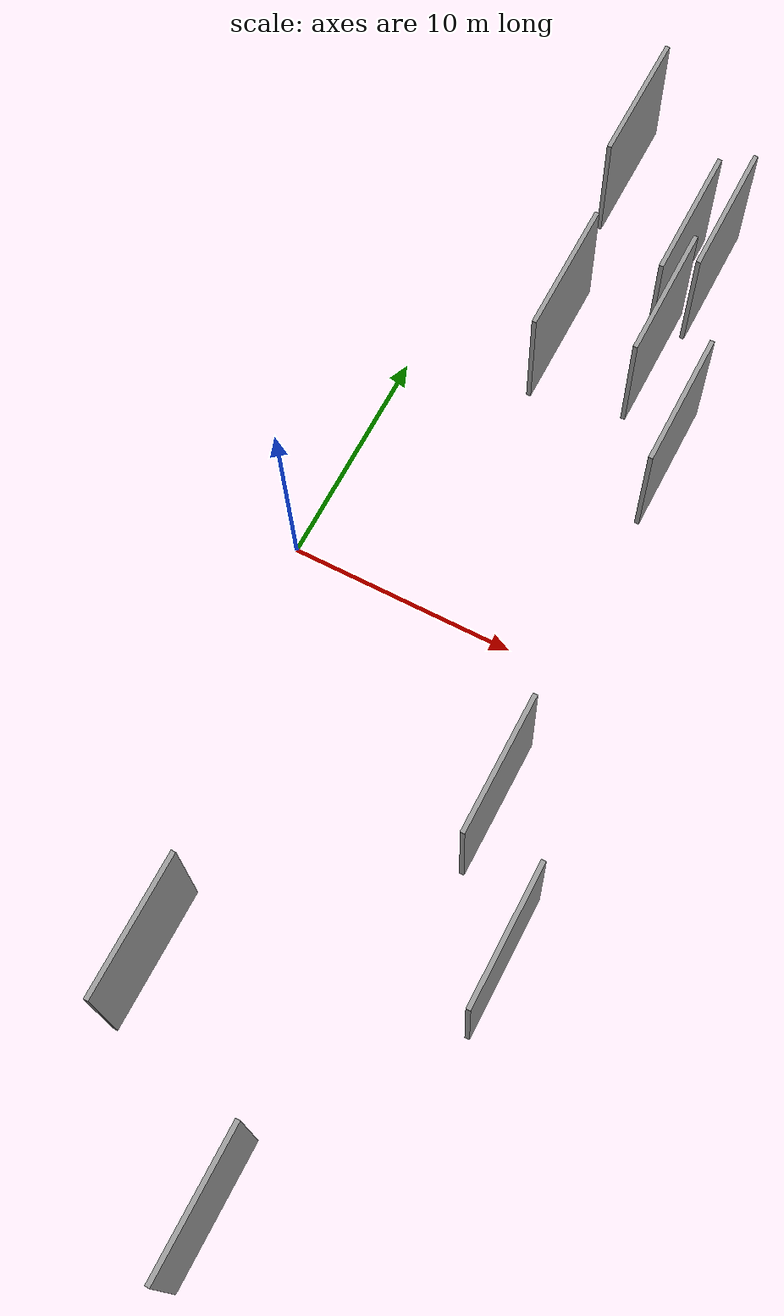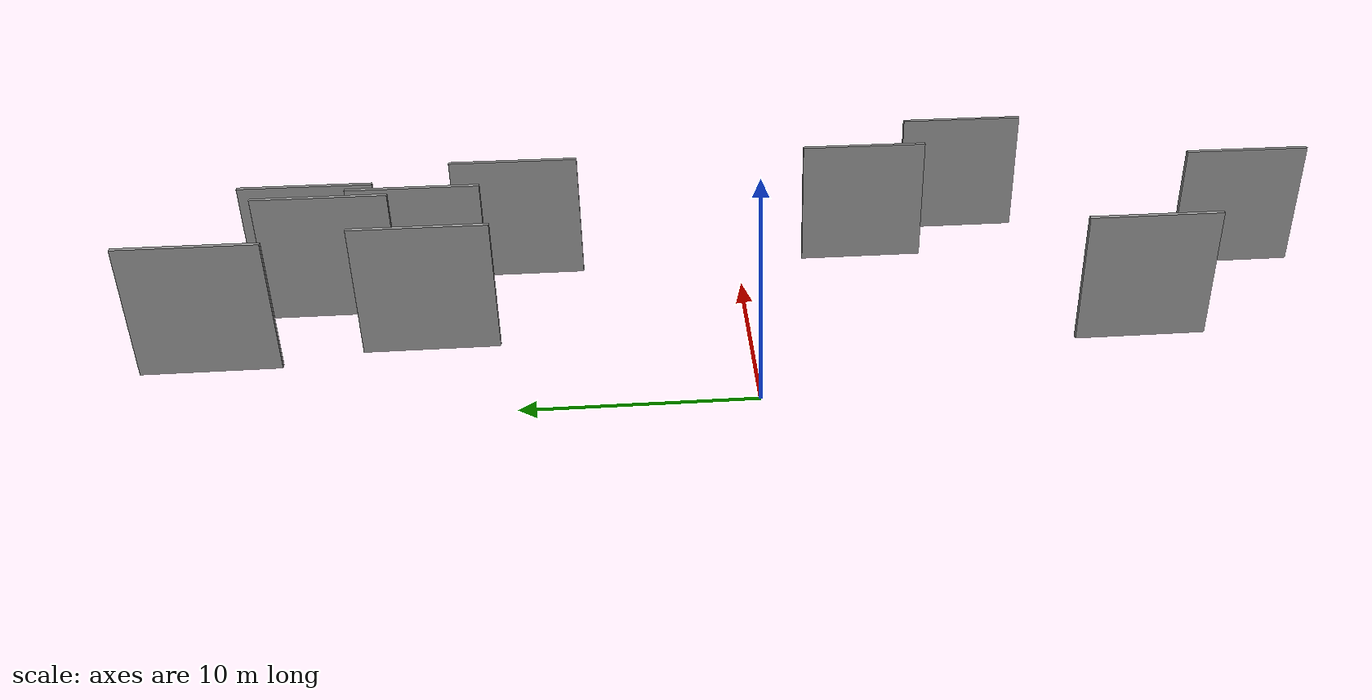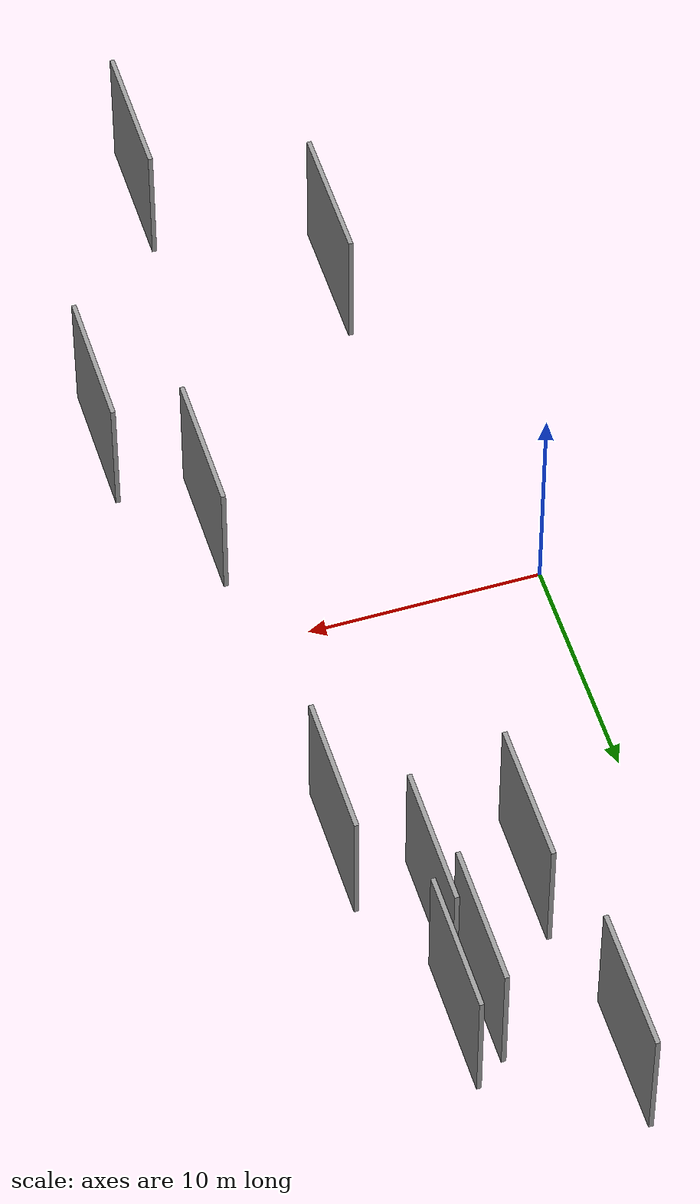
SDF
<sdf version="1.6">
 <world name="default">
  <scene>
   <sky><clouds><speed>12</speed></clouds></sky>
   <ambient>0.4 0.4 0.4 1</ambient>
   <background>0.7 0.7 0.7 1</background>
   <shadows>1</shadows>
  </scene>
  <gravity>0 0 -9.8066</gravity>
  <magnetic_field>6e-06 2.3e-05 -4.2e-05</magnetic_field>
  <physics default="0" name="default_physics" type="ode">
   <ode>
    <solver>
     <type>quick</type>
     <iters>10</iters>
     <sor>1.0</sor>
     <use_dynamic_moi_rescaling>0</use_dynamic_moi_rescaling>
    </solver>
    <constraints>
     <cfm>0</cfm>
     <erp>0.2</erp>
     <contact_max_correcting_vel>100</contact_max_correcting_vel>
     <contact_surface_layer>0.001</contact_surface_layer>
    </constraints>
   </ode>
   <max_step_size>0.004</max_step_size>
   <real_time_factor>1</real_time_factor>
   <real_time_update_rate>250</real_time_update_rate>
  </physics>
  <light name="sun" type="directional">
   <pose>0 0 10 0 0 0</pose>
   <diffuse>0.8 0.8 0.8 1</diffuse>
   <specular>0.2 0.2 0.2 1</specular>
   <attenuation>
    <range>1000</range>
    <constant>0.9</constant>
    <linear>0.01</linear>
    <quadratic>0.001</quadratic>
   </attenuation>
   <direction>-0.5 0.1 -0.9</direction>
  </light>
  <model name="grey_wall_1">
   <static>1</static>
   <pose>3.6169 -17.6353 0.0 0.000000 0.000000 1.570796</pose>
   <link name="link">
    <pose>0 0 3.00 0 0 0</pose>
    <collision name="collision"><geometry><box><size>6.00 0.2 6.00</size></box></geometry></collision>
    <visual name="visual">
     <cast_shadows>0</cast_shadows>
     <geometry><box><size>6.00 0.2 6.00</size></box></geometry>
     <material>
      <script>
       <uri>model://grey_wall/materials/scripts</uri>
       <uri>model://grey_wall/materials/textures</uri>
       <name>vrc/grey_wall</name>
      </script>
     </material>
    </visual>
   </link>
  </model>
  <model name="grey_wall_2">
   <static>1</static>
   <pose>5.3866 14.1680 0.0 0.000000 0.000000 1.570796</pose>
   <link name="link">
    <pose>0 0 3.00 0 0 0</pose>
    <collision name="collision"><geometry><box><size>6.00 0.2 6.00</size></box></geometry></collision>
    <visual name="visual">
     <cast_shadows>0</cast_shadows>
     <geometry><box><size>6.00 0.2 6.00</size></box></geometry>
     <material>
      <script>
       <uri>model://grey_wall/materials/scripts</uri>
       <uri>model://grey_wall/materials/textures</uri>
       <name>vrc/grey_wall</name>
      </script>
     </material>
    </visual>
   </link>
  </model>
  <model name="grey_wall_3">
   <static>1</static>
   <pose>15.6339 -11.8410 0.0 0.000000 0.000000 1.570796</pose>
   <link name="link">
    <pose>0 0 3.00 0 0 0</pose>
    <collision name="collision"><geometry><box><size>6.00 0.2 6.00</size></box></geometry></collision>
    <visual name="visual">
     <cast_shadows>0</cast_shadows>
     <geometry><box><size>6.00 0.2 6.00</size></box></geometry>
     <material>
      <script>
       <uri>model://grey_wall/materials/scripts</uri>
       <uri>model://grey_wall/materials/textures</uri>
       <name>vrc/grey_wall</name>
      </script>
     </material>
    </visual>
   </link>
  </model>
  <model name="grey_wall_4">
   <static>1</static>
   <pose>4.4022 23.4402 0.0 0.000000 0.000000 1.570796</pose>
   <link name="link">
    <pose>0 0 3.00 0 0 0</pose>
    <collision name="collision"><geometry><box><size>6.00 0.2 6.00</size></box></geometry></collision>
    <visual name="visual">
     <cast_shadows>0</cast_shadows>
     <geometry><box><size>6.00 0.2 6.00</size></box></geometry>
     <material>
      <script>
       <uri>model://grey_wall/materials/scripts</uri>
       <uri>model://grey_wall/materials/textures</uri>
       <name>vrc/grey_wall</name>
      </script>
     </material>
    </visual>
   </link>
  </model>
  <model name="grey_wall_5">
   <static>1</static>
   <pose>9.5581 14.9873 0.0 0.000000 0.000000 1.570796</pose>
   <link name="link">
    <pose>0 0 3.00 0 0 0</pose>
    <collision name="collision"><geometry><box><size>6.00 0.2 6.00</size></box></geometry></collision>
    <visual name="visual">
     <cast_shadows>0</cast_shadows>
     <geometry><box><size>6.00 0.2 6.00</size></box></geometry>
     <material>
      <script>
       <uri>model://grey_wall/materials/scripts</uri>
       <uri>model://grey_wall/materials/textures</uri>
       <name>vrc/grey_wall</name>
      </script>
     </material>
    </visual>
   </link>
  </model>
  <model name="grey_wall_6">
   <static>1</static>
   <pose>12.5631 -6.2851 0.0 0.000000 0.000000 1.570796</pose>
   <link name="link">
    <pose>0 0 3.00 0 0 0</pose>
    <collision name="collision"><geometry><box><size>6.00 0.2 6.00</size></box></geometry></collision>
    <visual name="visual">
     <cast_shadows>0</cast_shadows>
     <geometry><box><size>6.00 0.2 6.00</size></box></geometry>
     <material>
      <script>
       <uri>model://grey_wall/materials/scripts</uri>
       <uri>model://grey_wall/materials/textures</uri>
       <name>vrc/grey_wall</name>
      </script>
     </material>
    </visual>
   </link>
  </model>
  <model name="grey_wall_7">
   <static>1</static>
   <pose>12.2308 10.6742 0.0 0.000000 0.000000 1.570796</pose>
   <link name="link">
    <pose>0 0 3.00 0 0 0</pose>
    <collision name="collision"><geometry><box><size>6.00 0.2 6.00</size></box></geometry></collision>
    <visual name="visual">
     <cast_shadows>0</cast_shadows>
     <geometry><box><size>6.00 0.2 6.00</size></box></geometry>
     <material>
      <script>
       <uri>model://grey_wall/materials/scripts</uri>
       <uri>model://grey_wall/materials/textures</uri>
       <name>vrc/grey_wall</name>
      </script>
     </material>
    </visual>
   </link>
  </model>
  <model name="grey_wall_8">
   <static>1</static>
   <pose>10.3520 -24.6975 0.0 0.000000 0.000000 1.570796</pose>
   <link name="link">
    <pose>0 0 3.00 0 0 0</pose>
    <collision name="collision"><geometry><box><size>6.00 0.2 6.00</size></box></geometry></collision>
    <visual name="visual">
     <cast_shadows>0</cast_shadows>
     <geometry><box><size>6.00 0.2 6.00</size></box></geometry>
     <material>
      <script>
       <uri>model://grey_wall/materials/scripts</uri>
       <uri>model://grey_wall/materials/textures</uri>
       <name>vrc/grey_wall</name>
      </script>
     </material>
    </visual>
   </link>
  </model>
  <model name="grey_wall_9">
   <static>1</static>
   <pose>10.1667 19.8664 0.0 0.000000 0.000000 1.570796</pose>
   <link name="link">
    <pose>0 0 3.00 0 0 0</pose>
    <collision name="collision"><geometry><box><size>6.00 0.2 6.00</size></box></geometry></collision>
    <visual name="visual">
     <cast_shadows>0</cast_shadows>
     <geometry><box><size>6.00 0.2 6.00</size></box></geometry>
     <material>
      <script>
       <uri>model://grey_wall/materials/scripts</uri>
       <uri>model://grey_wall/materials/textures</uri>
       <name>vrc/grey_wall</name>
      </script>
     </material>
    </visual>
   </link>
  </model>
  <model name="grey_wall_10">
   <static>1</static>
   <pose>8.8776 18.9984 0.0 0.000000 0.000000 1.570796</pose>
   <link name="link">
    <pose>0 0 3.00 0 0 0</pose>
    <collision name="collision"><geometry><box><size>6.00 0.2 6.00</size></box></geometry></collision>
    <visual name="visual">
     <cast_shadows>0</cast_shadows>
     <geometry><box><size>6.00 0.2 6.00</size></box></geometry>
     <material>
      <script>
       <uri>model://grey_wall/materials/scripts</uri>
       <uri>model://grey_wall/materials/textures</uri>
       <name>vrc/grey_wall</name>
      </script>
     </material>
    </visual>
   </link>
  </model>
 </world>
</sdf>
